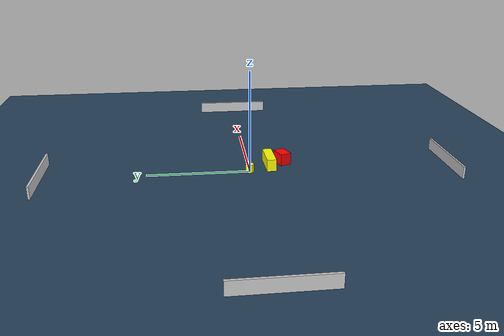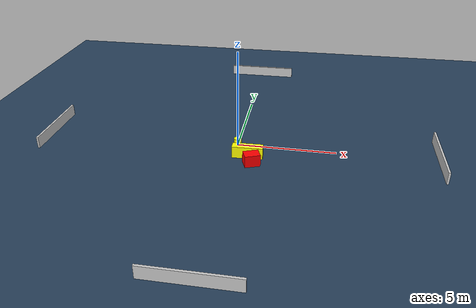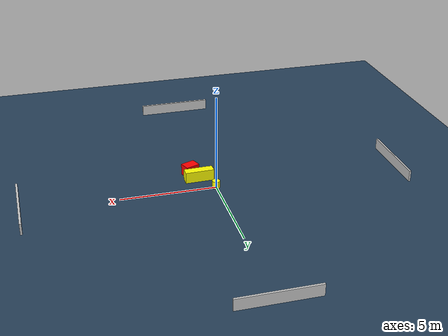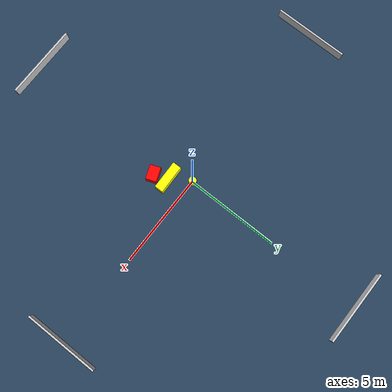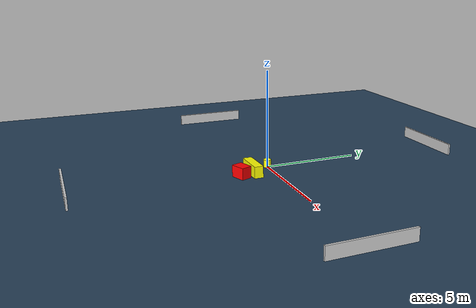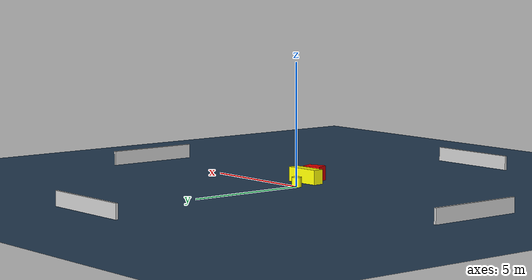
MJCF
<?xml version="1.0" ?>
<mujoco model="generated_environment">
  <option timestep="0.01" integrator="RK4" cone="elliptic"/>
  <default>
    <geom density="1"/>
  </default>
  <asset>
    <texture builtin="gradient" height="3072" name="skybox" rgb1="0.3 0.5 0.7" rgb2="0 0 0" type="skybox" width="512"/>
    <texture builtin="checker" height="300" name="groundplane" rgb1="0.2 0.3 0.4" rgb2="0.1 0.2 0.3" type="2d" width="300"/>
    <material name="groundplane" reflectance="0.2" texrepeat="5 5" texture="groundplane"/>
  </asset>
  <worldbody>
    <light dir="0 0 -1" directional="true" pos="0 0 1.5"/>
    <geom condim="3" friction="0.5 0.005 0.001" material="groundplane" name="floor" pos="0 0 0" size="0 0 0.05" type="plane"/>
    <body name="walls">
      <geom name="wall_1" condim="4" pos="-10.0 0.0 0.3" rgba="0.800000011920929 0.800000011920929 0.800000011920929 1.0" size="0.05 2.0 0.3" type="box"/>
      <geom name="wall_2" condim="4" pos="10.0 0.0 0.3" rgba="0.800000011920929 0.800000011920929 0.800000011920929 1.0" size="0.05 2.0 0.3" type="box"/>
      <geom name="wall_3" condim="4" pos="0.0 -10.0 0.3" rgba="0.800000011920929 0.800000011920929 0.800000011920929 1.0" size="2.0 0.05 0.3" type="box"/>
      <geom name="wall_4" condim="4" pos="0.0 10.0 0.3" rgba="0.800000011920929 0.800000011920929 0.800000011920929 1.0" size="2.0 0.05 0.3" type="box"/>
    </body>
    <body name="robot">
      <joint name="joint_x" type="slide" pos="0 0 0" axis="1 0 0"/>
      <joint name="joint_y" type="slide" pos="0 0 0" axis="0 1 0"/>
      <geom name="robot" type="cylinder" pos="0.0 0.0 0.2" size="0.2 0.2 0.0" mass="5.0" friction="1.0 0.005 0.0001" condim="4" rgba="1.0 1.0 0.0 1.0"/>
    </body>
    <body name="obstacle_1_movable">
      <geom name="obstacle_1_movable" condim="4" pos="0.6561212048565295 -1.0452704285433103 0.3" euler="0 0 181.5614039146767" friction="0.0 0.005 0.001" rgba="1.0 1.0 0.0 1.0" size="0.7656281470590351 0.23027520516776323 0.3" type="box" mass="0.1"/>
      <joint type="free"/>
    </body>
    <body name="obstacle_2_static">
      <geom name="obstacle_2_static" condim="4" pos="0.954523666208945 -1.7497381412325324 0.3" euler="0 0 110.95578007811713" friction="0.0 0.005 0.001" rgba="1.0 0.0 0.0 1.0" size="0.2826595495597555 0.38393631140525625 0.3" type="box"/>
    </body>
  </worldbody>
  <actuator>
    <motor name="actuator_x" joint="joint_x" gear="1" ctrlrange="-1 1"/>
    <motor name="actuator_y" joint="joint_y" gear="1" ctrlrange="-1 1"/>
  </actuator>
</mujoco>
